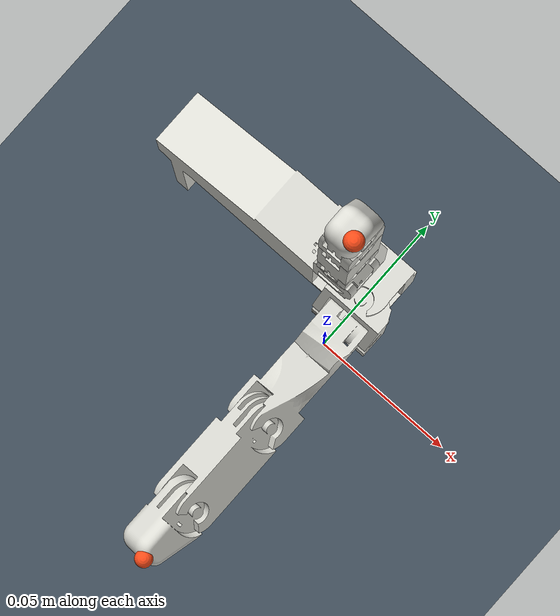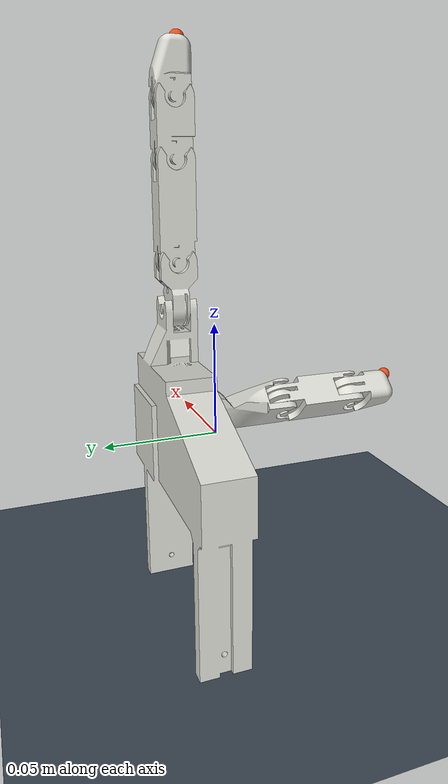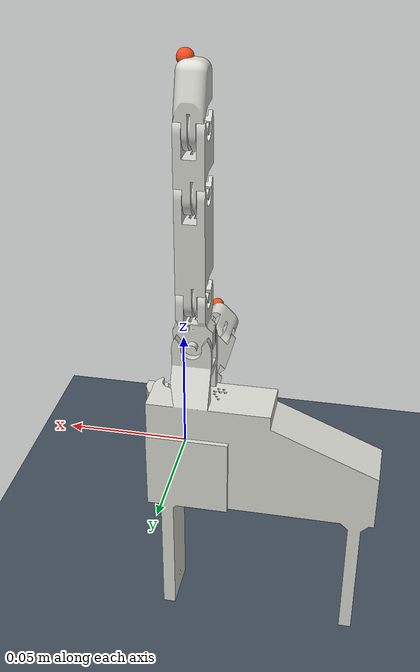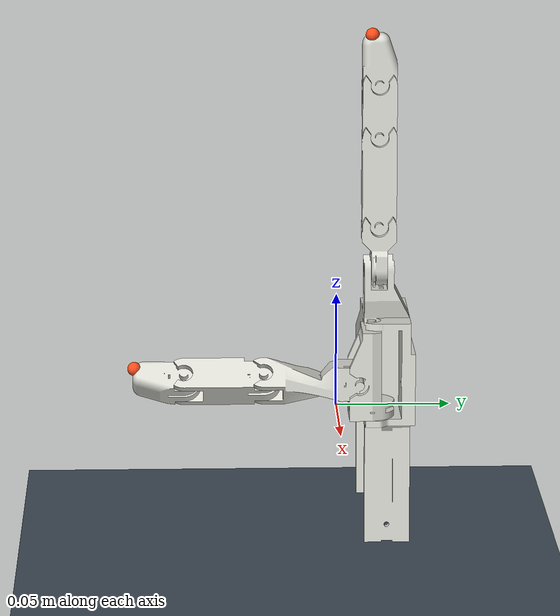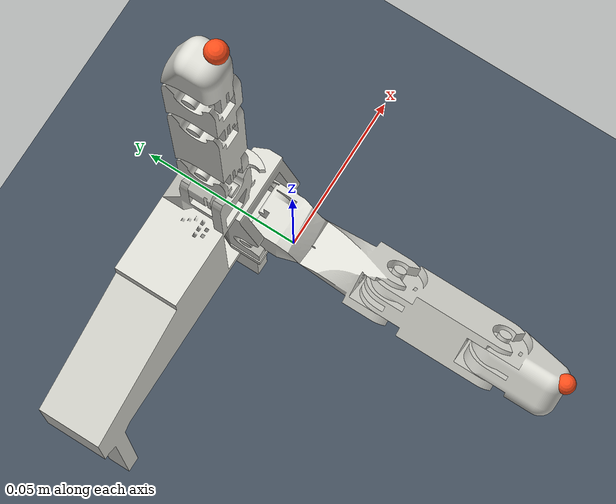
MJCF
<!-- GENERATED by sim/convert.py from hardware/robot_description/fusion_export. Do not edit by hand: change convert.py and re-run it. -->
<mujoco model="tendra_hand">
  <compiler angle="radian" meshdir="../../hardware/robot_description/fusion_export/meshes" autolimits="true" />
  <option timestep="0.002" integrator="implicitfast" />
  <default>
    <joint damping="0.01" armature="0.0001" />
    <geom type="mesh" density="1240" material="pla" friction="0.8 0.02 0.001" />
    <position kp="0.5" forcerange="-0.05 0.05" inheritrange="1" />
  </default>
  <visual>
    <global azimuth="135" elevation="-20" />
    <headlight ambient="0.4 0.4 0.4" diffuse="0.6 0.6 0.6" />
  </visual>
  <asset>
    <material name="pla" rgba="0.85 0.85 0.82 1" specular="0.2" />
    <texture name="grid" type="2d" builtin="checker" rgb1="0.2 0.25 0.3" rgb2="0.3 0.35 0.4" width="512" height="512" />
    <material name="floor" texture="grid" texrepeat="8 8" reflectance="0.1" />
    <mesh name="base_link" file="base_link.stl" scale="0.001 0.001 0.001" inertia="exact" />
    <mesh name="Indexfix_1" file="Indexfix_1.stl" scale="0.001 0.001 0.001" inertia="legacy" />
    <mesh name="Indexend_1" file="Indexend_1.stl" scale="0.001 0.001 0.001" inertia="exact" />
    <mesh name="Indexmiddle_1" file="Indexmiddle_1.stl" scale="0.001 0.001 0.001" inertia="exact" />
    <mesh name="Indextip_1" file="Indextip_1.stl" scale="0.001 0.001 0.001" inertia="exact" />
    <mesh name="Thumbroll_1" file="Thumbroll_1.stl" scale="0.001 0.001 0.001" inertia="exact" />
    <mesh name="Thumbend_1" file="Thumbend_1.stl" scale="0.001 0.001 0.001" inertia="exact" />
    <mesh name="Thumbmiddle_1" file="Thumbmiddle_1.stl" scale="0.001 0.001 0.001" inertia="exact" />
    <mesh name="Thumbtip_1" file="Thumbtip_1.stl" scale="0.001 0.001 0.001" inertia="exact" />
  </asset>
  <worldbody>
    <light pos="0 -0.5 0.8" dir="0 0.5 -0.8" />
    <geom name="floor" type="plane" size="0.3 0.3 0.01" pos="0 0 -0.0676" material="floor" contype="0" conaffinity="0" density="0" />
    <body name="palm">
      <geom name="palm" mesh="base_link" pos="0 0 0" />
      <body name="index_base" pos="-0.008531 0.012523 0.059976">
        <joint name="index_mcp_abd" axis="-0 1 0" range="-0.261799 0.261799" />
        <geom name="index_base" mesh="Indexfix_1" pos="0.008531 -0.012523 -0.059976" />
        <body name="index_proximal" pos="-0.0055 0.0065 0.019">
          <joint name="index_mcp_flex" axis="1 -0 0" range="-0.087266 1.65806" />
          <geom name="index_proximal" mesh="Indexend_1" pos="0.014031 -0.019023 -0.078976" />
          <body name="index_middle" pos="0 0 0.04">
            <joint name="index_pip" axis="1 0 0" range="-0.087266 1.65806" />
            <geom name="index_middle" mesh="Indexmiddle_1" pos="0.014031 -0.019023 -0.118976" />
            <body name="index_distal" pos="0 0 0.023">
              <joint name="index_dip" axis="1 0 0" range="-0.087266 1.65806" />
              <geom name="index_distal" mesh="Indextip_1" pos="0.014031 -0.019023 -0.141976" />
              <site name="index_tip" pos="0.0085431 -0.00326171 0.0221673" size="0.003" rgba="1 0.3 0.1 1" />
            </body>
          </body>
        </body>
      </body>
      <body name="thumb_base" pos="0.001 0.015524 0.038476">
        <joint name="thumb_cmc_rot" axis="-0 0 -1" range="-1.74533 0.698132" />
        <geom name="thumb_base" mesh="Thumbroll_1" pos="-0.001 -0.015524 -0.038476" />
        <body name="thumb_metacarpal" pos="-0.011 -0.0055 -0.0271">
          <joint name="thumb_cmc_flex" axis="-1 -0 -0" range="-0.226893 1.39626" />
          <geom name="thumb_metacarpal" mesh="Thumbend_1" pos="0.01 -0.010024 -0.011376" />
          <body name="thumb_proximal" pos="0.005697 -0.042 -0.005303">
            <joint name="thumb_mcp" axis="-0.707107 -0 -0.707107" range="-0.087266 1.65806" />
            <geom name="thumb_proximal" mesh="Thumbmiddle_1" pos="0.004303 0.031976 -0.006073" />
            <body name="thumb_distal" pos="0 -0.035 0">
              <joint name="thumb_ip" axis="-0.707107 -0 -0.707107" range="-0.087266 1.65806" />
              <geom name="thumb_distal" mesh="Thumbtip_1" pos="0.004303 0.066976 -0.006073" />
              <site name="thumb_tip" pos="0.00729422 -0.0216815 0.0117954" size="0.003" rgba="1 0.3 0.1 1" />
            </body>
          </body>
        </body>
      </body>
    </body>
  </worldbody>
  <contact>
    <exclude body1="palm" body2="index_base" />
    <exclude body1="palm" body2="thumb_base" />
    <exclude body1="palm" body2="thumb_metacarpal" />
  </contact>
  <actuator>
    <position name="index_dip" joint="index_dip" />
    <position name="index_pip" joint="index_pip" />
    <position name="index_mcp_flex" joint="index_mcp_flex" />
    <position name="index_mcp_abd" joint="index_mcp_abd" />
    <position name="thumb_ip" joint="thumb_ip" />
    <position name="thumb_mcp" joint="thumb_mcp" />
    <position name="thumb_cmc_flex" joint="thumb_cmc_flex" />
    <position name="thumb_cmc_rot" joint="thumb_cmc_rot" />
  </actuator>
</mujoco>
